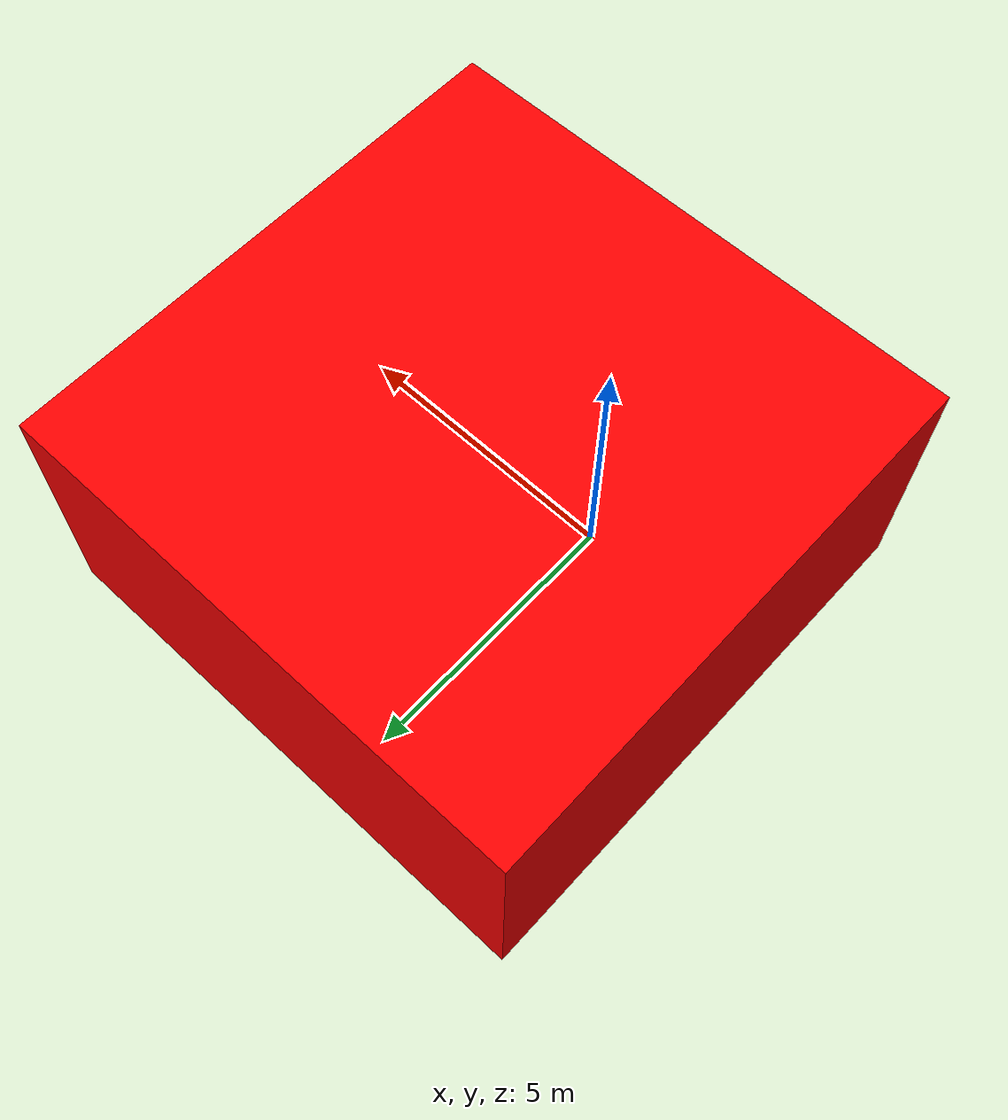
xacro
<?xml version="1.0"?>
<robot xmlns:xacro="http://www.ros.org/wiki/xacro" name="pinpointbot">

<xacro:include filename="pinpoint_include.xacro" />

<link name="world"></link>

<joint name="base_joint" type="fixed">
        <origin xyz="1.5 1.0 1.0" rpy="0 0 0"/>
        <parent link="world"/>
        <child link="base_link"/>
    </joint>

    <link name="base_link">
        <visual>
            <origin xyz="0 0 0.05" rpy="0 0 0"/>
            <geometry>
                <box size="10 10 5.1" />
            </geometry>
            <material name="red">
                <color rgba="255 0 0"/>
            </material>
        </visual>
        <collision>
            <origin xyz="0 0 0.05" rpy="0 0 0"/>
            <geometry>
                <box size="2.5 1.5 0.1" />
            </geometry>
        </collision>
        <xacro:box_inertia m="0.5" x="0.5" y="0.25" z="0.15">
        </xacro:box_inertia>
    </link>
</robot>

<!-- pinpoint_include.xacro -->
<robot xmlns:xacro="http://www.ros.org/wiki/xacro">

<!-- =============== Inertia macros ==============-->
<!-- Based on https://en.wikipedia.org/wiki/List_of_moments_of_inertia -->
<!-- https://github.com/ros-mobile-robots/mobile_robot_description/blob/48819dcec6f897b7d02e8d4aa6c66d803ddf6239/urdf/include/common_macros.urdf.xacro -->

<!--
  params:
  - m [float]: link mass;
  - r [float]: cylinder radius;
  - l [float]: cylinder lenght (height);
-->

  <xacro:macro name="cylinder_inertia" params="m r l o_xyz:='0.0 0.0 0.0' o_rpy:='0.0 0.0 0.0'">
    <inertial>
      <mass value="${m}"/>
      <inertia ixx="${m*(3*r*r+l*l)/12}" ixy = "0" ixz = "0"
               iyy="${m*(3*r*r+l*l)/12}" iyz = "0" izz="${m*r*r/2}"/>
      <origin xyz="${o_xyz}" rpy="${o_rpy}" />
    </inertial>
  </xacro:macro>

<!--
  params:
  - m [float]: link mass;
  - x [float]: link dimension on the X-axis;
  - y [float]: link dimension on the Y-axis;
  - z [float]: link dimension on the Z-axis;
-->

 <xacro:macro name="box_inertia" params="m x y z o_xyz:='0.0 0.0 0.0' o_rpy:='0.0 0.0 0.0'">
    <inertial>
      <mass value="${m}"/>
      <inertia ixx="${m / 12.0 * (y*y + z*z)}" ixy="0.0" ixz="0.0"
               iyy="${m / 12.0 * (x*x + z*z)}" iyz="0.0"
               izz="${m / 12.0 * (x*x + y*y)}"/>
      <origin xyz="${o_xyz}" rpy="${o_rpy}" />
    </inertial>
  </xacro:macro>

</robot>
